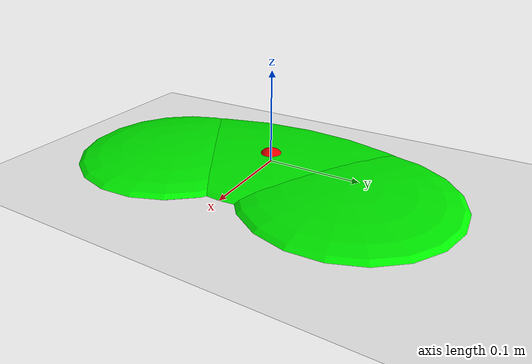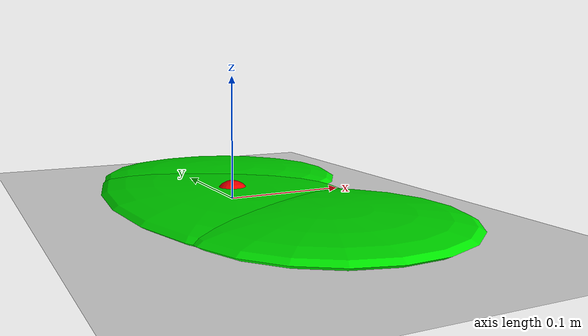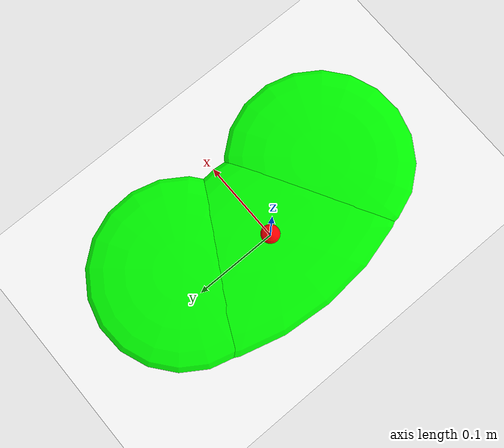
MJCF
<mujoco model="anchored_figures">
    <option timestep="0.01" gravity="0 0 0"/>

    <!-- Materiali -->
    <asset>
        <material name="green_material" rgba="0.0 1.0 0.0 1.0"/>
        <material name="white_material" rgba="1.0 1.0 1.0 1.0"/>
        <material name="red_material" rgba="1.0 0.0 0.0 1.0"/> <!-- Materiale rosso -->
    </asset>

    <!-- Corpo del mondo -->
    <worldbody>
        <!-- Piano bianco sul piano XY -->
        <geom type="plane" size="3 3 0.01" pos="0.0 0.0 -0.01" material="white_material" friction="0 0 0"/>

        <!-- Corpo principale (centro di massa) -->
        <body name="composite_body" pos="0 0 0" mocap="false">
            <inertial pos="0 0 0" mass="0.000001" diaginertia="0.000001 0.000001 0.000001"/>

            <!-- Joint per movimento sul piano XY -->
            <joint name="slide_x" type="slide" axis="1 0 0" limited="false"/>
            <joint name="slide_y" type="slide" axis="0 1 0" limited="false"/>
            <joint name="rotation_z" type="hinge" axis="0 0 1" limited="false"/>

            <!-- Rappresentazione del centro di massa -->
            <geom type="sphere" size="0.015" pos="0 0 0" material="red_material" friction="0 0 0"/>

            <!-- Prima figura (ellissoide grande) -->
            <body name="large_ellipsoid" pos="0 0 0">
                <geom type="ellipsoid" size="0.1 0.19 0.01" material="green_material" friction="0 0 0"/>
            </body>

            <!-- Seconda figura (ellissoide piccola) -->
            <body name="small_ellipsoid1" pos="0.03 0.1 0">
                <geom type="ellipsoid" size="0.11 0.11 0.01" material="green_material" euler="0 0 30" friction="0 0 0"/>
            </body>

            <!-- Terza figura (ellissoide piccola) -->
            <body name="small_ellipsoid2" pos="0.03 -0.1 0">
                <geom type="ellipsoid" size="0.11 0.11 0.01" material="green_material" euler="0 0 30" friction="0 0 0"/>
            </body>

        </body>

        <camera name="top_view" pos="0 0 1" xyaxes="1 0 0 0 1 0"/>

    </worldbody>

    <!-- Attuatori -->
    <actuator>
        <!-- Attuatore per movimento lungo X -->
        <motor name="act_slide_x" joint="slide_x" ctrllimited="false" gear="1e200"/>
        <!-- Attuatore per movimento lungo Y -->
        <motor name="act_slide_y" joint="slide_y" ctrllimited="false" gear="1e200"/>
        <!-- Attuatore per rotazione attorno a Z -->
        <motor name="act_rotation_z" joint="rotation_z" ctrllimited="false"/>
    </actuator>

    <!-- Configurazione visiva -->
    <visual>
        <global/>
        <map stiffness="1e-3"/>
        <quality shadowsize="2048"/>
    </visual>
</mujoco>
